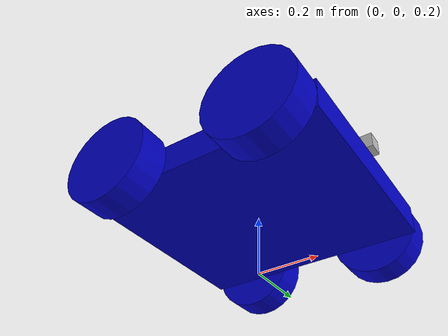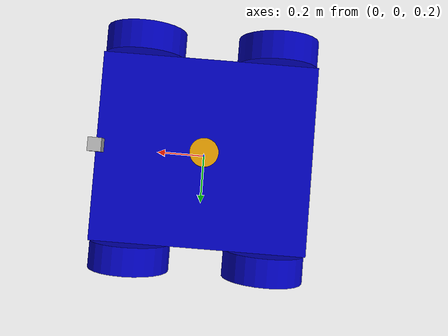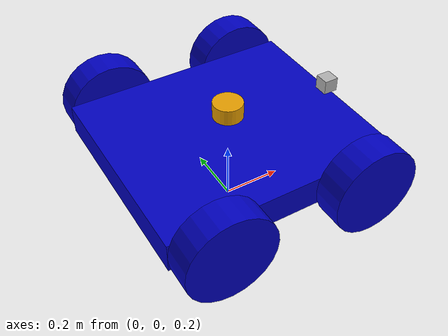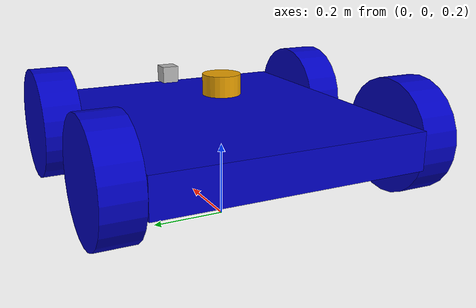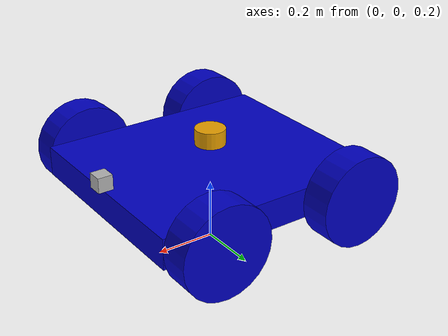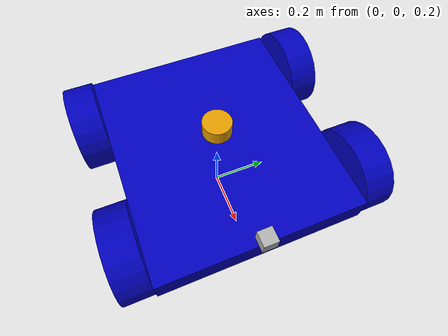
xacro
<?xml version="1.0"?>
<robot xmlns:xacro="http://www.ros.org/wiki/xacro" name="mars_rover">
<xacro:include filename="$(find mobile_robot)/urdf/robot.gazebo.urdf"/>

    <xacro:property name="const"    value="0.083"/>
    <xacro:property name="mass"     value="1.0"/>
    <xacro:property name="height"   value="0.1"/>
    <xacro:property name="width"    value="0.8"/>
    <xacro:property name="depth"    value="0.7"/>
    <link name="base_footprint">

    </link>
    <link name="base_link">
        <visual>
            <geometry>
                <box size="0.8 0.7 0.1" />
            </geometry>
            <material name="Blue">
                <color rgba="0.0 0.0 0.75 1.0" />
            </material>
        </visual>
        <collision>
            <geometry>
                <box size="0.0 0.0 0.0" />
                <cylinder radius="0.0" length="0.0"/>
            </geometry>
        </collision>
        <inertial>
            <mass value="1.0"/>
            <origin xyz="0.0 0.0 0.0" rpy="0.0 0.0 0.0"/>
            <inertia ixx="${const*mass*(height*height + depth*depth)}" ixy="0.0" ixz="0.0"
                    iyy="${const*mass*(height*height + width*width)}" iyz="0.0"
                    izz="${const*mass*(width*width + depth*depth)}"/>
        </inertial>
    </link>

<joint name="base_joint" type="fixed">
    <parent link="base_footprint"/>
    <child link="base_link"/>
    <axis xyz="0.0 0.0 0.0"/>
    <origin xyz="0 0 0.45" rpy="0 0 0"/>
</joint>

    <link name="camera">
        <visual>
            <geometry>
                <box size="0.05 0.05 0.05" />
            </geometry>
            <material name="LightGrey">
                <color rgba="0.7 0.7 0.7 1.0"/>
            </material>
        </visual>
        <collision>
            <geometry>
                <box size="0.05 0.05 0.05" />
            </geometry>
        </collision>
        <inertial>
            <mass value="0.005"/>
            <origin xyz="0.0 0.0 0.1" rpy="0.0 0.0 0.0"/>
            <inertia ixx="1e-6" ixy="0" ixz="0" iyy="1e-6" iyz="0" izz="1e-6" />
    </inertial>
    </link>

    <gazebo reference="camera">
        <material>Gazebo/Black</material>
    </gazebo>

    <joint name="camera_joint" type="fixed">
        <origin xyz="0.395 0.0 0.075" rpy="0.0 0.0 0.0"/>
        <parent link="base_link"/>
        <child link="camera"/>
        <axis xyz="0.0 0.0 0.0"/>
        <limit lower="0.0" upper="0.0" effort="0.0" velocity="0.0"/>
    </joint>

<!-- wheel setup -->
<xacro:macro name="wheel" params="name x y">
    <link name="wheel_${name}_link">
    <visual>
        <geometry>
            <cylinder radius="0.15" length="0.1"/>
        </geometry>
        <material name="Red">
            <color rgba="0.0 0.0 0.75 "/>
        </material>
    </visual>
    <collision>
        <geometry>
            <cylinder radius="0.15" length="0.1"/>
        </geometry>
    </collision>
    <inertial>
        <mass value="0.50"/>
        <origin xyz="0.0 0.0 0.0" rpy="0.0 0.0 0.0"/>
        <inertia ixx=".007" ixy="0.0" ixz="0.0"
                    iyy=".007" iyz="0.0"
                    izz=".0068"/>
    </inertial>
    </link>

    <joint name="wheel_${name}_joint" type="continuous">
        <parent link="base_link"/>
        <child link="wheel_${name}_link"/>
        <axis xyz="0.0 .0 1.0"/>
        <limit effort="1000" velocity="1000"/>
        <dynamics damping="1.0" friction="1.0"/>
        <origin xyz="${x} ${y} .0" rpy="1.57 0.0 0.0"/>
    </joint>
</xacro:macro>

<xacro:wheel name="front_right" x="-0.25" y="0.4"/>
<xacro:wheel name="front_left" x="-0.25" y="-0.4"/>
<xacro:wheel name="rear_right" x="0.25" y="0.4"/>
<xacro:wheel name="rear_left" x="0.25" y="-0.4"/>

</robot>

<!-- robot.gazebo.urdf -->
<robot>
<gazebo reference="base_link">
<material>Gazebo/Blue</material>
</gazebo>

<gazebo reference="wheel_rear_left_link">
<material>Gazebo/Black</material>
</gazebo>

<gazebo reference="wheel_rear_right_link">
<material>Gazebo/Black</material>
</gazebo>

<gazebo reference="wheel_front_left_link">
<material>Gazebo/Black</material>
</gazebo>

<gazebo reference="wheel_front_right_link">
<material>Gazebo/Black</material>
</gazebo>

<gazebo reference="camera">
<material>Gazebo/Black</material>
</gazebo>

<gazebo>
    <plugin name="skid_steer_drive_controller" filename="libgazebo_ros_skid_steer_drive.so">
        <updateRate>100.0</updateRate>
        <robotNamespace></robotNamespace>
        <leftFrontJoint>wheel_front_right_joint</leftFrontJoint>
        <rightFrontJoint>wheel_front_left_joint</rightFrontJoint>
        <leftRearJoint>wheel_rear_right_joint</leftRearJoint>
        <rightRearJoint>wheel_rear_left_joint</rightRearJoint>
        <wheelSeparation>0.5</wheelSeparation>
        <wheelDiameter>0.256</wheelDiameter>
        <torque>1000</torque>
        <commandTopic>cmd_vel</commandTopic>
        <odometryFrame>odom</odometryFrame>
        <robotBaseFrame>dummy</robotBaseFrame>
        <publishWheelTF>true</publishWheelTF>
        <publishOdom>true</publishOdom>
        <publishWheelJointState>true</publishWheelJointState>
        <covariance_x>0.0001</covariance_x>
        <covariance_y>0.0001</covariance_y>
        <covariance_yaw>0.01</covariance_yaw>
    </plugin>
</gazebo>

<link name="lidar_link">
    <inertial>
      <origin xyz="0 0 0" rpy="0 0 0"/>
      <mass value="0.125"/>
      <inertia ixx="0.001"  ixy="0"  ixz="0" iyy="0.001" iyz="0" izz="0.001" />
    </inertial>

    <collision>
      <origin xyz="0 0 0" rpy="0 0 0"/>
      <geometry>
         <cylinder radius="0.0508" length="0.055"/>
      </geometry>
    </collision>

    <visual>
      <origin xyz="0 0 0" rpy="0 0 0"/>
      <geometry>
         <cylinder radius="0.0508" length="0.055"/>
      </geometry>
    </visual>
  </link>

  <joint name="lidar_joint" type="fixed">
    <parent link="base_link"/>
    <child link="lidar_link"/>
    <origin xyz="0 0 0.12" rpy="0 0 0"/>
  </joint>

  <gazebo reference="lidar_link">
    <sensor name="lidar" type="ray">
      <always_on>true</always_on>
      <visualize>true</visualize>
      <update_rate>5</update_rate>
      <ray>
        <scan>
          <horizontal>
            <samples>360</samples>
            <resolution>1.000000</resolution>
            <min_angle>0.000000</min_angle>
            <max_angle>6.280000</max_angle>
          </horizontal>
        </scan>
        <range>
          <min>0.120000</min>
          <max>3.5</max>
          <resolution>0.015000</resolution>
        </range>
        <noise>
          <type>gaussian</type>
          <mean>0.0</mean>
          <stddev>0.01</stddev>
        </noise>
      </ray>
      <plugin name="scan" filename="libgazebo_ros_ray_sensor.so">
        <ros>
          <remapping>~/out:=scan</remapping>
        </ros>
        <output_type>sensor_msgs/LaserScan</output_type>
        <frame_name>lidar_link</frame_name>
      </plugin>
    </sensor>
  </gazebo>

<gazebo reference="camera">
<sensor name="cam" type="camera" update_rate="30">
    <camera name="cam1">
    <horizontal_fov>1.3962</horizontal_fov>
    <image>
        <width>800</width>
        <height>800</height>
        <format>R8G8B8</format>
    </image>

    <clip>
        <near>0.02</near>
        <far>300</far>
    </clip>

    <noise>
        <type>gaussian</type>
        <mean>0.0</mean>
        <stddev>0.007</stddev>
    </noise>
    </camera>
    <plugin name="camera_controller" filename="libgazebo_ros_camera.so">
        <alwaysOn>true</alwaysOn>
        <updateRate>0.0</updateRate>
        <imageTopicName>image_raw</imageTopicName>
        <cameraInfoTopicName>camera_info</cameraInfoTopicName>
        <frameName>camera</frameName>
        <hackBaseline>0.07</hackBaseline>
        <distortionK1>0.0</distortionK1>
        <distortionK2>0.0</distortionK2>
        <distortionK3>0.0</distortionK3>
        <distortionT1>0.0</distortionT1>
        <distortionT2>0.0</distortionT2>
    </plugin>
</sensor>
</gazebo>
</robot>
